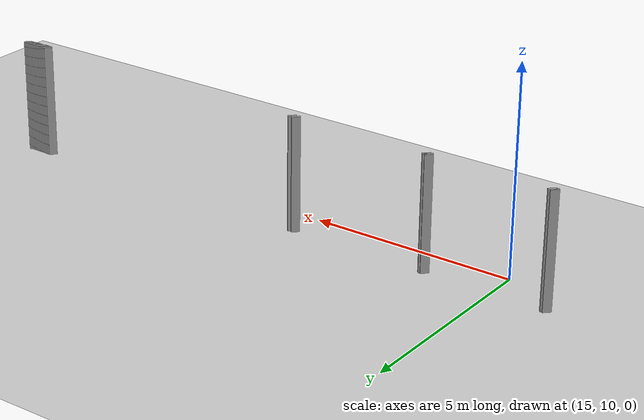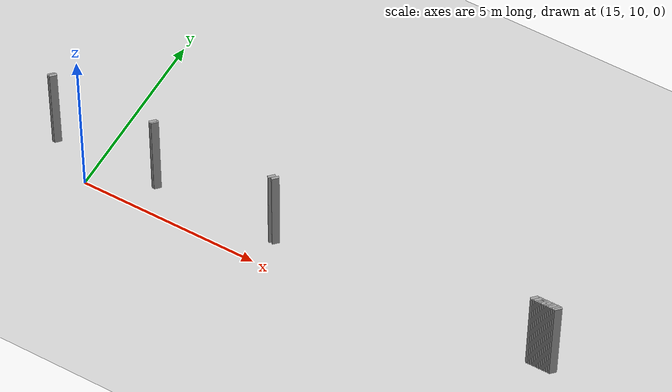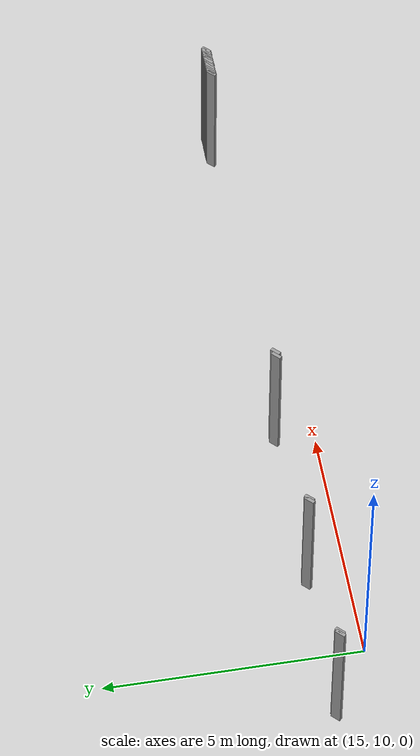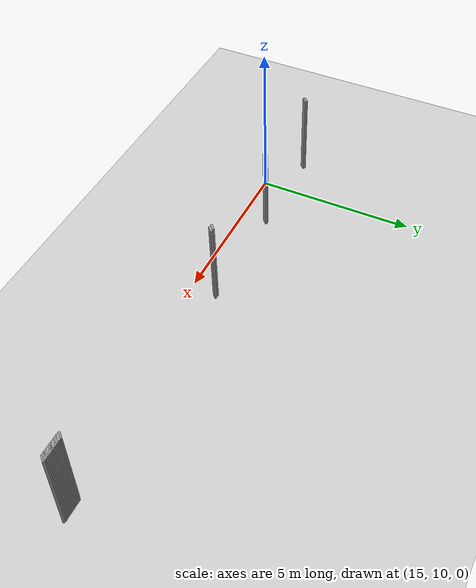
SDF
<sdf version="1.5">
 <world name="default">
  <include><uri>model://ground_plane</uri></include>
  <include><uri>model://sun</uri></include>
  <model name="grey_wall_2973">
   <static>1</static>
   <link name="link">
    <pose>13.65 10.8  1.4 0 0 -0.785398163397</pose>
    <collision name="collision"><geometry><box><size>0.0707106781187 .2  2.8</size></box></geometry></collision>
    <visual name="visual">
     <cast_shadows>0</cast_shadows>
     <geometry><box><size>0.0707106781187 .2  2.8</size></box></geometry>
     <material>
      <script>
       <uri>model://grey_wall/materials/scripts</uri>
       <uri>model://grey_wall/materials/textures</uri>
       <name>vrc/grey_wall</name>
      </script>
     </material>
    </visual>
   </link>
  </model>
  <model name="grey_wall_2974">
   <static>1</static>
   <link name="link">
    <pose>13.7 10.8  1.4 0 0 -0.785398163397</pose>
    <collision name="collision"><geometry><box><size>0.0707106781187 .2  2.8</size></box></geometry></collision>
    <visual name="visual">
     <cast_shadows>0</cast_shadows>
     <geometry><box><size>0.0707106781187 .2  2.8</size></box></geometry>
     <material>
      <script>
       <uri>model://grey_wall/materials/scripts</uri>
       <uri>model://grey_wall/materials/textures</uri>
       <name>vrc/grey_wall</name>
      </script>
     </material>
    </visual>
   </link>
  </model>
  <model name="grey_wall_2975">
   <static>1</static>
   <link name="link">
    <pose>16.65 10.8  1.4 0 0 -0.785398163397</pose>
    <collision name="collision"><geometry><box><size>0.0707106781187 .2  2.8</size></box></geometry></collision>
    <visual name="visual">
     <cast_shadows>0</cast_shadows>
     <geometry><box><size>0.0707106781187 .2  2.8</size></box></geometry>
     <material>
      <script>
       <uri>model://grey_wall/materials/scripts</uri>
       <uri>model://grey_wall/materials/textures</uri>
       <name>vrc/grey_wall</name>
      </script>
     </material>
    </visual>
   </link>
  </model>
  <model name="grey_wall_2976">
   <static>1</static>
   <link name="link">
    <pose>16.7 10.8  1.4 0 0 -0.785398163397</pose>
    <collision name="collision"><geometry><box><size>0.0707106781187 .2  2.8</size></box></geometry></collision>
    <visual name="visual">
     <cast_shadows>0</cast_shadows>
     <geometry><box><size>0.0707106781187 .2  2.8</size></box></geometry>
     <material>
      <script>
       <uri>model://grey_wall/materials/scripts</uri>
       <uri>model://grey_wall/materials/textures</uri>
       <name>vrc/grey_wall</name>
      </script>
     </material>
    </visual>
   </link>
  </model>
  <model name="grey_wall_2977">
   <static>1</static>
   <link name="link">
    <pose>20.1 10.8  1.4 0 0 -0.785398163397</pose>
    <collision name="collision"><geometry><box><size>0.0707106781187 .2  2.8</size></box></geometry></collision>
    <visual name="visual">
     <cast_shadows>0</cast_shadows>
     <geometry><box><size>0.0707106781187 .2  2.8</size></box></geometry>
     <material>
      <script>
       <uri>model://grey_wall/materials/scripts</uri>
       <uri>model://grey_wall/materials/textures</uri>
       <name>vrc/grey_wall</name>
      </script>
     </material>
    </visual>
   </link>
  </model>
  <model name="grey_wall_2978">
   <static>1</static>
   <link name="link">
    <pose>20.2 10.8  1.4 0 0 -0.785398163397</pose>
    <collision name="collision"><geometry><box><size>0.0707106781187 .2  2.8</size></box></geometry></collision>
    <visual name="visual">
     <cast_shadows>0</cast_shadows>
     <geometry><box><size>0.0707106781187 .2  2.8</size></box></geometry>
     <material>
      <script>
       <uri>model://grey_wall/materials/scripts</uri>
       <uri>model://grey_wall/materials/textures</uri>
       <name>vrc/grey_wall</name>
      </script>
     </material>
    </visual>
   </link>
  </model>
  <model name="grey_wall_2979">
   <static>1</static>
   <link name="link">
    <pose>27.5 10.8  1.4 0 0 -0.785398163397</pose>
    <collision name="collision"><geometry><box><size>0.0707106781187 .2  2.8</size></box></geometry></collision>
    <visual name="visual">
     <cast_shadows>0</cast_shadows>
     <geometry><box><size>0.0707106781187 .2  2.8</size></box></geometry>
     <material>
      <script>
       <uri>model://grey_wall/materials/scripts</uri>
       <uri>model://grey_wall/materials/textures</uri>
       <name>vrc/grey_wall</name>
      </script>
     </material>
    </visual>
   </link>
  </model>
  <model name="grey_wall_2980">
   <static>1</static>
   <link name="link">
    <pose>27.55 10.8  1.4 0 0 -0.785398163397</pose>
    <collision name="collision"><geometry><box><size>0.0707106781187 .2  2.8</size></box></geometry></collision>
    <visual name="visual">
     <cast_shadows>0</cast_shadows>
     <geometry><box><size>0.0707106781187 .2  2.8</size></box></geometry>
     <material>
      <script>
       <uri>model://grey_wall/materials/scripts</uri>
       <uri>model://grey_wall/materials/textures</uri>
       <name>vrc/grey_wall</name>
      </script>
     </material>
    </visual>
   </link>
  </model>
  <model name="grey_wall_2981">
   <static>1</static>
   <link name="link">
    <pose>27.6 10.8  1.4 0 0 -0.785398163397</pose>
    <collision name="collision"><geometry><box><size>0.0707106781187 .2  2.8</size></box></geometry></collision>
    <visual name="visual">
     <cast_shadows>0</cast_shadows>
     <geometry><box><size>0.0707106781187 .2  2.8</size></box></geometry>
     <material>
      <script>
       <uri>model://grey_wall/materials/scripts</uri>
       <uri>model://grey_wall/materials/textures</uri>
       <name>vrc/grey_wall</name>
      </script>
     </material>
    </visual>
   </link>
  </model>
  <model name="grey_wall_2982">
   <static>1</static>
   <link name="link">
    <pose>27.65 10.8  1.4 0 0 -0.785398163397</pose>
    <collision name="collision"><geometry><box><size>0.0707106781187 .2  2.8</size></box></geometry></collision>
    <visual name="visual">
     <cast_shadows>0</cast_shadows>
     <geometry><box><size>0.0707106781187 .2  2.8</size></box></geometry>
     <material>
      <script>
       <uri>model://grey_wall/materials/scripts</uri>
       <uri>model://grey_wall/materials/textures</uri>
       <name>vrc/grey_wall</name>
      </script>
     </material>
    </visual>
   </link>
  </model>
  <model name="grey_wall_2983">
   <static>1</static>
   <link name="link">
    <pose>27.7 10.8  1.4 0 0 -0.785398163397</pose>
    <collision name="collision"><geometry><box><size>0.0707106781187 .2  2.8</size></box></geometry></collision>
    <visual name="visual">
     <cast_shadows>0</cast_shadows>
     <geometry><box><size>0.0707106781187 .2  2.8</size></box></geometry>
     <material>
      <script>
       <uri>model://grey_wall/materials/scripts</uri>
       <uri>model://grey_wall/materials/textures</uri>
       <name>vrc/grey_wall</name>
      </script>
     </material>
    </visual>
   </link>
  </model>
  <model name="grey_wall_2984">
   <static>1</static>
   <link name="link">
    <pose>27.75 10.8  1.4 0 0 -0.785398163397</pose>
    <collision name="collision"><geometry><box><size>0.0707106781187 .2  2.8</size></box></geometry></collision>
    <visual name="visual">
     <cast_shadows>0</cast_shadows>
     <geometry><box><size>0.0707106781187 .2  2.8</size></box></geometry>
     <material>
      <script>
       <uri>model://grey_wall/materials/scripts</uri>
       <uri>model://grey_wall/materials/textures</uri>
       <name>vrc/grey_wall</name>
      </script>
     </material>
    </visual>
   </link>
  </model>
  <model name="grey_wall_2985">
   <static>1</static>
   <link name="link">
    <pose>27.8 10.8  1.4 0 0 -0.785398163397</pose>
    <collision name="collision"><geometry><box><size>0.0707106781187 .2  2.8</size></box></geometry></collision>
    <visual name="visual">
     <cast_shadows>0</cast_shadows>
     <geometry><box><size>0.0707106781187 .2  2.8</size></box></geometry>
     <material>
      <script>
       <uri>model://grey_wall/materials/scripts</uri>
       <uri>model://grey_wall/materials/textures</uri>
       <name>vrc/grey_wall</name>
      </script>
     </material>
    </visual>
   </link>
  </model>
  <model name="grey_wall_2986">
   <static>1</static>
   <link name="link">
    <pose>27.85 10.8  1.4 0 0 -0.785398163397</pose>
    <collision name="collision"><geometry><box><size>0.0707106781187 .2  2.8</size></box></geometry></collision>
    <visual name="visual">
     <cast_shadows>0</cast_shadows>
     <geometry><box><size>0.0707106781187 .2  2.8</size></box></geometry>
     <material>
      <script>
       <uri>model://grey_wall/materials/scripts</uri>
       <uri>model://grey_wall/materials/textures</uri>
       <name>vrc/grey_wall</name>
      </script>
     </material>
    </visual>
   </link>
  </model>
  <model name="grey_wall_2987">
   <static>1</static>
   <link name="link">
    <pose>27.9 10.8  1.4 0 0 -0.785398163397</pose>
    <collision name="collision"><geometry><box><size>0.0707106781187 .2  2.8</size></box></geometry></collision>
    <visual name="visual">
     <cast_shadows>0</cast_shadows>
     <geometry><box><size>0.0707106781187 .2  2.8</size></box></geometry>
     <material>
      <script>
       <uri>model://grey_wall/materials/scripts</uri>
       <uri>model://grey_wall/materials/textures</uri>
       <name>vrc/grey_wall</name>
      </script>
     </material>
    </visual>
   </link>
  </model>
  <model name="grey_wall_2988">
   <static>1</static>
   <link name="link">
    <pose>27.95 10.8  1.4 0 0 -0.785398163397</pose>
    <collision name="collision"><geometry><box><size>0.0707106781187 .2  2.8</size></box></geometry></collision>
    <visual name="visual">
     <cast_shadows>0</cast_shadows>
     <geometry><box><size>0.0707106781187 .2  2.8</size></box></geometry>
     <material>
      <script>
       <uri>model://grey_wall/materials/scripts</uri>
       <uri>model://grey_wall/materials/textures</uri>
       <name>vrc/grey_wall</name>
      </script>
     </material>
    </visual>
   </link>
  </model>
  <model name="grey_wall_2989">
   <static>1</static>
   <link name="link">
    <pose>28.0 10.8  1.4 0 0 -0.785398163397</pose>
    <collision name="collision"><geometry><box><size>0.0707106781187 .2  2.8</size></box></geometry></collision>
    <visual name="visual">
     <cast_shadows>0</cast_shadows>
     <geometry><box><size>0.0707106781187 .2  2.8</size></box></geometry>
     <material>
      <script>
       <uri>model://grey_wall/materials/scripts</uri>
       <uri>model://grey_wall/materials/textures</uri>
       <name>vrc/grey_wall</name>
      </script>
     </material>
    </visual>
   </link>
  </model>
  <model name="grey_wall_2990">
   <static>1</static>
   <link name="link">
    <pose>28.05 10.8  1.4 0 0 -0.785398163397</pose>
    <collision name="collision"><geometry><box><size>0.0707106781187 .2  2.8</size></box></geometry></collision>
    <visual name="visual">
     <cast_shadows>0</cast_shadows>
     <geometry><box><size>0.0707106781187 .2  2.8</size></box></geometry>
     <material>
      <script>
       <uri>model://grey_wall/materials/scripts</uri>
       <uri>model://grey_wall/materials/textures</uri>
       <name>vrc/grey_wall</name>
      </script>
     </material>
    </visual>
   </link>
  </model>
  <model name="grey_wall_2991">
   <static>1</static>
   <link name="link">
    <pose>28.1 10.8  1.4 0 0 -0.785398163397</pose>
    <collision name="collision"><geometry><box><size>0.0707106781187 .2  2.8</size></box></geometry></collision>
    <visual name="visual">
     <cast_shadows>0</cast_shadows>
     <geometry><box><size>0.0707106781187 .2  2.8</size></box></geometry>
     <material>
      <script>
       <uri>model://grey_wall/materials/scripts</uri>
       <uri>model://grey_wall/materials/textures</uri>
       <name>vrc/grey_wall</name>
      </script>
     </material>
    </visual>
   </link>
  </model>
  <model name="grey_wall_2992">
   <static>1</static>
   <link name="link">
    <pose>28.15 10.8  1.4 0 0 -0.785398163397</pose>
    <collision name="collision"><geometry><box><size>0.0707106781187 .2  2.8</size></box></geometry></collision>
    <visual name="visual">
     <cast_shadows>0</cast_shadows>
     <geometry><box><size>0.0707106781187 .2  2.8</size></box></geometry>
     <material>
      <script>
       <uri>model://grey_wall/materials/scripts</uri>
       <uri>model://grey_wall/materials/textures</uri>
       <name>vrc/grey_wall</name>
      </script>
     </material>
    </visual>
   </link>
  </model>
 </world>
</sdf>
